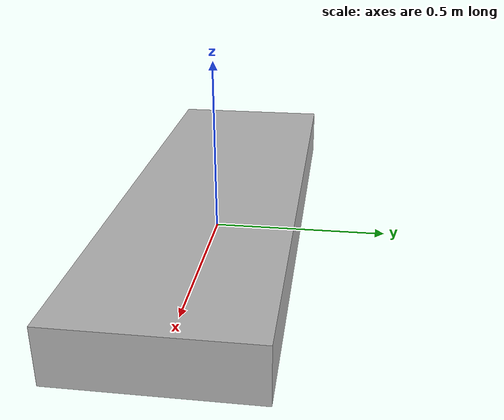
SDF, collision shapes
<?xml version="1.0"?>
  <sdf version="1.5">

    <model name="myartbot">
    <static>false</static>                                    <!--CHASSIS LINK-->
      <link name="chassis">
        <pose>0 0 0.05 0 0 0</pose>

        <collision name="collision">
          <geometry>
            <box>
              <size>1.5 0.5 0.15</size>
            </box>
          </geometry>
        </collision>

	<visual name="visual">
		<pose>0 0 0 0 0 1.5708</pose>
		 <geometry>
		   <mesh>
		    <uri>model://artbot.02/meshes/art.dae</uri>
		   </mesh>
		 </geometry>
	</visual>

	</link>

     <link name="wheelfl">                                  <!--FRONT LEFT WHEEL LINK-->
        <pose>0.1 0.115 0.05 0 1.5707 1.5707</pose>

        <collision name="collision">
          <geometry>
            <cylinder>
              <radius>0.05</radius>
              <length>0.03</length>
            </cylinder>
          </geometry>
        </collision>

        <visual name="visual">
          <geometry>
            <cylinder>
              <radius>0.05</radius>
              <length>0.03</length>
            </cylinder>
          </geometry>
        </visual>
      </link>

      <joint name="wheelfl_to_chassis" type="revolute">
        <pose>0 0 -0.03 0 0 0</pose>
        <child>wheelfl</child>
        <parent>chassis</parent>
        <axis>
          <xyz>0 0 1</xyz>
	</axis>
      </joint>

      <link name="wheelfr">                                  <!--FRONT RIGHT WHEEL LINK-->
        <pose>0.1 -0.115 0.05 0 1.5707 1.5707</pose>

        <collision name="collision">
          <geometry>
            <cylinder>
              <radius>0.05</radius>
              <length>0.03</length>
            </cylinder>
          </geometry>
        </collision>

        <visual name="visual">
          <geometry>
            <cylinder>
              <radius>0.05</radius>
              <length>0.03</length>
            </cylinder>
          </geometry>
        </visual>
      </link>

      <joint name="wheelfr_to_chassis" type="revolute">
        <pose>0 0 0.03 0 0 0</pose>
        <child>wheelfr</child>
        <parent>chassis</parent>
        <axis>
          <xyz>0 0 1</xyz>
	</axis>
      </joint>

      <link name="wheelbl">                                  <!--BACK LEFT WHEEL LINK-->
        <pose>-0.1 0.115 0.05 0 1.5707 1.5707</pose>

        <collision name="collision">
          <geometry>
            <cylinder>
              <radius>0.05</radius>
              <length>0.03</length>
            </cylinder>
          </geometry>
        </collision>

        <visual name="visual">
          <geometry>
            <cylinder>
              <radius>0.05</radius>
              <length>0.03</length>
            </cylinder>
          </geometry>
        </visual>
      </link>

      <joint name="wheelbl_to_chassis" type="revolute">
        <pose>0 0 -0.03 0 0 0</pose>
        <child>wheelbl</child>
        <parent>chassis</parent>
        <axis>
          <xyz>0 0 1</xyz>
        </axis>
      </joint>

      <link name="wheelbr">                                  <!--BACK RIGHT WHEEL LINK-->
        <pose>-0.1 -0.115 0.05 0 1.5707 1.5707</pose>

        <collision name="collision">
          <geometry>
            <cylinder>
              <radius>0.05</radius>
              <length>0.03</length>
            </cylinder>
          </geometry>
        </collision>

        <visual name="visual">
          <geometry>
            <cylinder>
              <radius>0.05</radius>
              <length>0.03</length>
            </cylinder>
          </geometry>
        </visual>
      </link>

      <joint name="wheelbr_to_chassis" type="revolute">
        <pose>0 0 0.03 0 0 0</pose>
        <child>wheelbr</child>
        <parent>chassis</parent>
        <axis>
          <xyz>0 0 1</xyz>
        </axis>
      </joint>

      <link name="camera1">

      <sensor type="camera" name="my_sensor">
        <pose>1.1 0 0.05 0 0 0</pose>
        <camera>
          <horizontal_fov>2.1679</horizontal_fov>
          <image>
            <width>320</width>
            <height>240</height>
          </image>
          <clip>
            <near>0.1</near>
            <far>100</far>
          </clip>
        </camera>
        <always_on>1</always_on>
        <update_rate>30</update_rate>
        <visualize>true</visualize>
        <plugin name="camera_controller" filename="libgazebo_ros_camera.so">
        </plugin>
      </sensor>

      </link>

      <joint name="camera_to_chassis" type="fixed">
        <parent>chassis</parent>
        <child>camera1</child>
        <pose>0 0 0 0 0 0</pose>
      </joint>

      <link name="laser">
        <sensor type="ray" name="head_hokuyo_sensor">
          <pose>1 0 0.025 0 0 0</pose>
          <visualize>true</visualize>
          <update_rate>20</update_rate>
          <ray>
            <scan>
              <horizontal>
                <samples>400</samples>
                <resolution>1</resolution>
                <min_angle>-1.570796</min_angle>
                <max_angle>1.570796</max_angle>
              </horizontal>
            </scan>
            <range>
              <min>0.1</min>
              <max>10</max>
              <resolution>0.01</resolution>
            </range>
          </ray>
          <plugin name="gazebo_ros_head_hokuyo_controller" filename="libgazebo_ros_laser.so">
            <topicName>/scan</topicName>
        </plugin>
        </sensor>
      </link>

     <joint name="laser_to_chassis" type="fixed">
       <parent>chassis</parent>
       <child>laser</child>
       <pose> 0 0 0 0 0 0 </pose>
     </joint>

    <plugin name="object_controller" filename="libgazebo_ros_planar_move.so">
      	<commandTopic>cmd_vel</commandTopic>
      	<odometryTopic>odom</odometryTopic>
      	<odometryFrame>odom</odometryFrame>
      	<odometryRate>20.0</odometryRate>
      	<robotBaseFrame>chassis</robotBaseFrame>
   </plugin>

    </model>
  </sdf>
